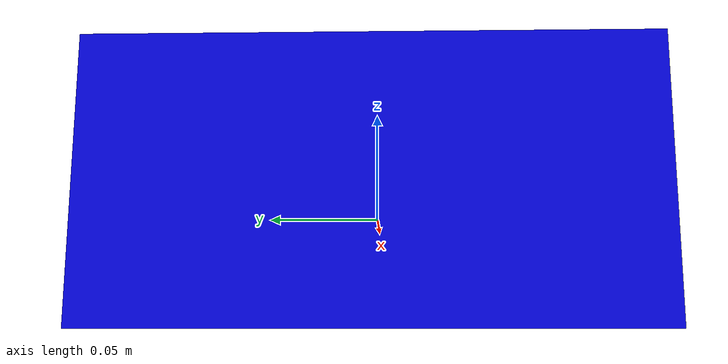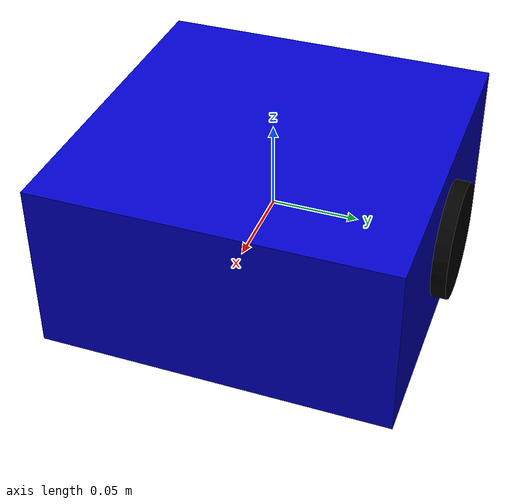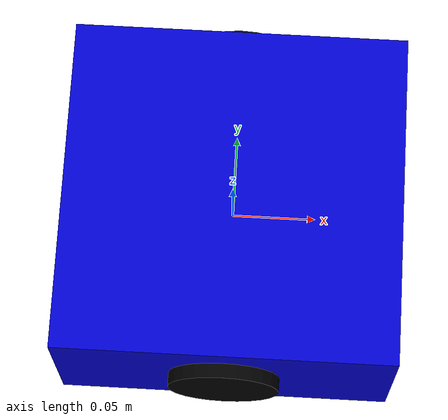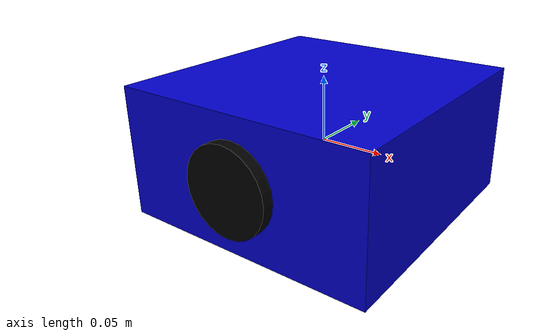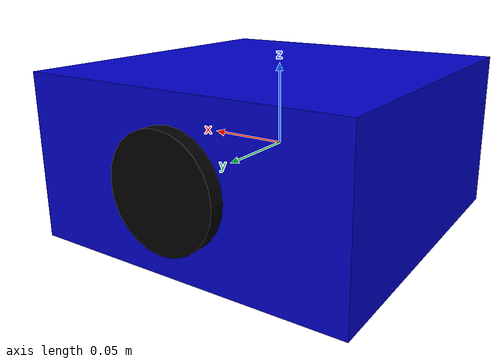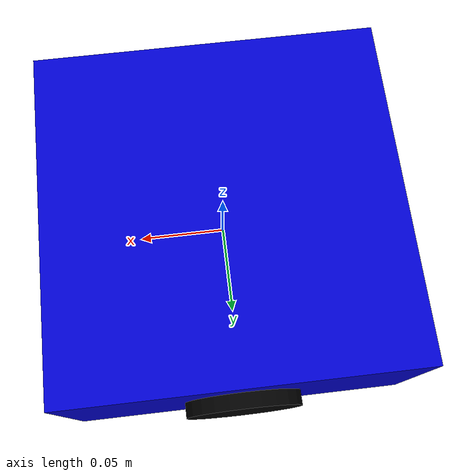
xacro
<?xml version="1.0"?>
<robot name="metasejong2025" xmlns:xacro="http://www.ros.org/wiki/xacro">

  <!-- Constants for robot dimensions -->
  <xacro:property name="PI" value="3.1415926535897931"/>
  <xacro:property name="wheel_radius" value="0.033"/>
  <xacro:property name="wheel_length" value="0.017"/>
  <xacro:property name="base_length" value="0.2"/>
  <xacro:property name="base_width" value="0.2"/>
  <xacro:property name="base_height" value="0.1"/>

  <!-- Base Link -->
  <link name="metasejong2025/base_link">
    <visual>
      <geometry>
        <box size="${base_length} ${base_width} ${base_height}"/>
      </geometry>
      <material name="blue">
        <color rgba="0 0 0.8 1"/>
      </material>
    </visual>
    <collision>
      <geometry>
        <box size="${base_length} ${base_width} ${base_height}"/>
      </geometry>
    </collision>
    <inertial>
      <mass value="10"/>
      <inertia ixx="0.1" ixy="0" ixz="0" iyy="0.1" iyz="0" izz="0.1"/>
    </inertial>
  </link>

  <!-- Left Wheel -->
  <link name="metasejong2025/left_wheel">
    <visual>
      <geometry>
        <cylinder radius="${wheel_radius}" length="${wheel_length}"/>
      </geometry>
      <material name="black">
        <color rgba="0 0 0 1"/>
      </material>
    </visual>
    <collision>
      <geometry>
        <cylinder radius="${wheel_radius}" length="${wheel_length}"/>
      </geometry>
    </collision>
    <inertial>
      <mass value="1"/>
      <inertia ixx="0.1" ixy="0" ixz="0" iyy="0.1" iyz="0" izz="0.1"/>
    </inertial>
  </link>

  <!-- Right Wheel -->
  <link name="metasejong2025/right_wheel">
    <visual>
      <geometry>
        <cylinder radius="${wheel_radius}" length="${wheel_length}"/>
      </geometry>
      <material name="black">
        <color rgba="0 0 0 1"/>
      </material>
    </visual>
    <collision>
      <geometry>
        <cylinder radius="${wheel_radius}" length="${wheel_length}"/>
      </geometry>
    </collision>
    <inertial>
      <mass value="1"/>
      <inertia ixx="0.1" ixy="0" ixz="0" iyy="0.1" iyz="0" izz="0.1"/>
    </inertial>
  </link>

  <!-- Joints -->
  <joint name="metasejong2025/left_wheel_joint" type="continuous">
    <parent link="metasejong2025/base_link"/>
    <child link="metasejong2025/left_wheel"/>
    <origin xyz="0 ${base_width/2} 0" rpy="${PI/2} 0 0"/>
    <axis xyz="0 0 1"/>
  </joint>

  <joint name="metasejong2025/right_wheel_joint" type="continuous">
    <parent link="metasejong2025/base_link"/>
    <child link="metasejong2025/right_wheel"/>
    <origin xyz="0 -${base_width/2} 0" rpy="${PI/2} 0 0"/>
    <axis xyz="0 0 1"/>
  </joint>

</robot>
